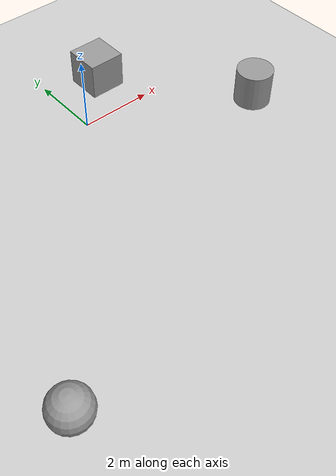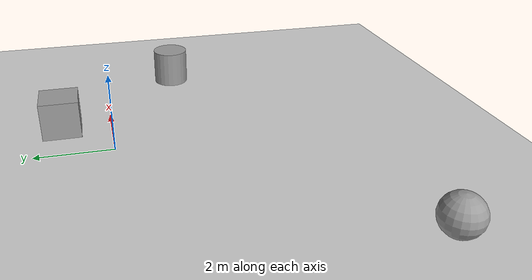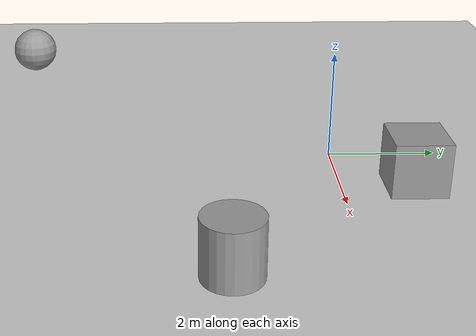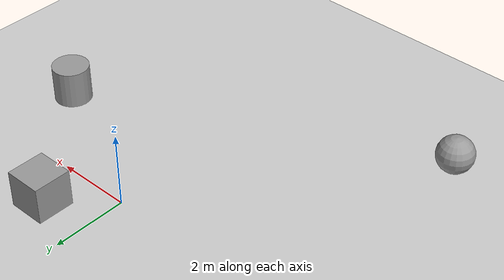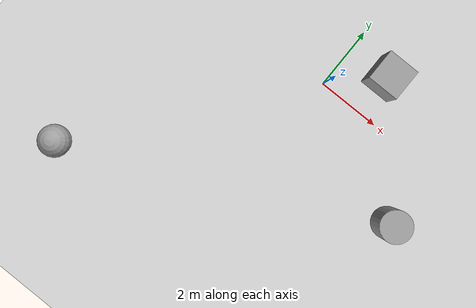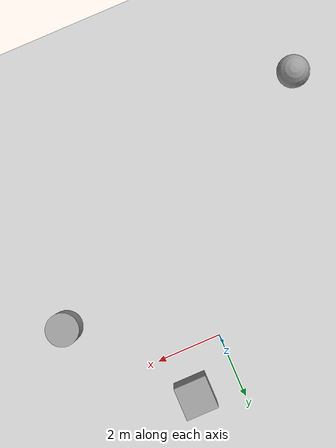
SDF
<?xml version="1.0"?>
<sdf version="1.6">
  <world name="default">

    <include>
      <uri>model://ground_plane</uri>
    </include>

    <include>
      <uri>model://sun</uri>
    </include>

    <scene>
      <shadows>false</shadows>
    </scene>

    <gui fullscreen='0'>
      <camera name='user_camera'>
        <pose frame=''>0.319654 -0.235002 9.29441 0 1.5138 0.009599</pose>
        <view_controller>orbit</view_controller>
        <projection_type>perspective</projection_type>
      </camera>
    </gui>

    <physics type="ode">
      <real_time_update_rate>1000.0</real_time_update_rate>
      <max_step_size>0.001</max_step_size>
      <real_time_factor>1</real_time_factor>
      <ode>
        <solver>
          <type>quick</type>
          <iters>150</iters>
          <precon_iters>0</precon_iters>
          <sor>1.400000</sor>
          <use_dynamic_moi_rescaling>1</use_dynamic_moi_rescaling>
        </solver>
        <constraints>
          <cfm>0.00001</cfm>
          <erp>0.2</erp>
          <contact_max_correcting_vel>2000.000000</contact_max_correcting_vel>
          <contact_surface_layer>0.01000</contact_surface_layer>
        </constraints>
      </ode>
    </physics>
     <model name='unit_box'>
      <pose>1.34928 1.29036 0.5 0 -0 0</pose>
      <link name='link'>
        <inertial>
          <mass>1</mass>
          <inertia>
            <ixx>0.166667</ixx>
            <ixy>0</ixy>
            <ixz>0</ixz>
            <iyy>0.166667</iyy>
            <iyz>0</iyz>
            <izz>0.166667</izz>
          </inertia>
          <pose>0 0 0 0 -0 0</pose>
        </inertial>
        <collision name='collision'>
          <geometry>
            <box>
              <size>1 1 1</size>
            </box>
          </geometry>
          <max_contacts>10</max_contacts>
          <surface>
            <contact>
              <ode/>
            </contact>
            <bounce/>
            <friction>
              <torsional>
                <ode/>
              </torsional>
              <ode/>
            </friction>
          </surface>
        </collision>
        <visual name='visual'>
          <geometry>
            <box>
              <size>1 1 1</size>
            </box>
          </geometry>
          <material>
            <script>
              <name>Gazebo/Grey</name>
              <uri>file://media/materials/scripts/gazebo.material</uri>
            </script>
          </material>
        </visual>
        <self_collide>0</self_collide>
        <enable_wind>0</enable_wind>
        <kinematic>0</kinematic>
      </link>
    </model>
    <model name='unit_sphere'>
      <pose>-5.121 -6.39973 0.5 0 -0 0</pose>
      <link name='link'>
        <inertial>
          <mass>1</mass>
          <inertia>
            <ixx>0.1</ixx>
            <ixy>0</ixy>
            <ixz>0</ixz>
            <iyy>0.1</iyy>
            <iyz>0</iyz>
            <izz>0.1</izz>
          </inertia>
          <pose>0 0 0 0 -0 0</pose>
        </inertial>
        <collision name='collision'>
          <geometry>
            <sphere>
              <radius>0.5</radius>
            </sphere>
          </geometry>
          <max_contacts>10</max_contacts>
          <surface>
            <contact>
              <ode/>
            </contact>
            <bounce/>
            <friction>
              <torsional>
                <ode/>
              </torsional>
              <ode/>
            </friction>
          </surface>
        </collision>
        <visual name='visual'>
          <geometry>
            <sphere>
              <radius>0.5</radius>
            </sphere>
          </geometry>
          <material>
            <script>
              <name>Gazebo/Grey</name>
              <uri>file://media/materials/scripts/gazebo.material</uri>
            </script>
          </material>
        </visual>
        <self_collide>0</self_collide>
        <enable_wind>0</enable_wind>
        <kinematic>0</kinematic>
      </link>
    </model>
    <model name='unit_cylinder'>
      <pose>4.14442 -2.055193 0.5 0 -0 0</pose>
      <link name='link'>
        <inertial>
          <mass>1</mass>
          <inertia>
            <ixx>0.145833</ixx>
            <ixy>0</ixy>
            <ixz>0</ixz>
            <iyy>0.145833</iyy>
            <iyz>0</iyz>
            <izz>0.125</izz>
          </inertia>
          <pose>0 0 0 0 -0 0</pose>
        </inertial>
        <collision name='collision'>
          <geometry>
            <cylinder>
              <radius>0.5</radius>
              <length>1</length>
            </cylinder>
          </geometry>
          <max_contacts>10</max_contacts>
          <surface>
            <contact>
              <ode/>
            </contact>
            <bounce/>
            <friction>
              <torsional>
                <ode/>
              </torsional>
              <ode/>
            </friction>
          </surface>
        </collision>
        <visual name='visual'>
          <geometry>
            <cylinder>
              <radius>0.5</radius>
              <length>1</length>
            </cylinder>
          </geometry>
          <material>
            <script>
              <name>Gazebo/Grey</name>
              <uri>file://media/materials/scripts/gazebo.material</uri>
            </script>
          </material>
        </visual>
        <self_collide>0</self_collide>
        <enable_wind>0</enable_wind>
        <kinematic>0</kinematic>
      </link>
    </model>

  </world>
</sdf>
